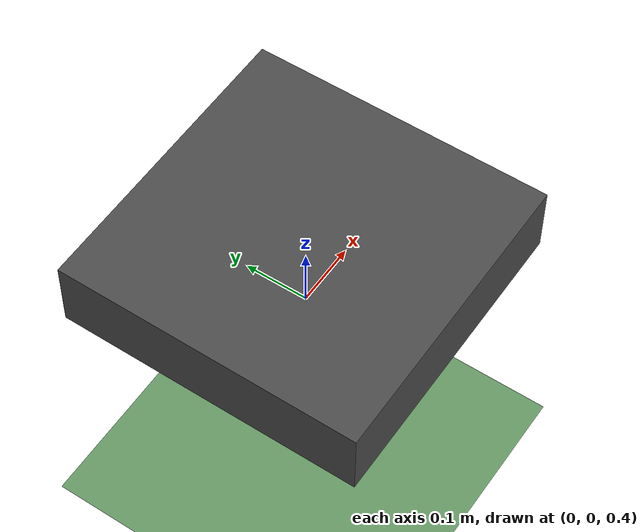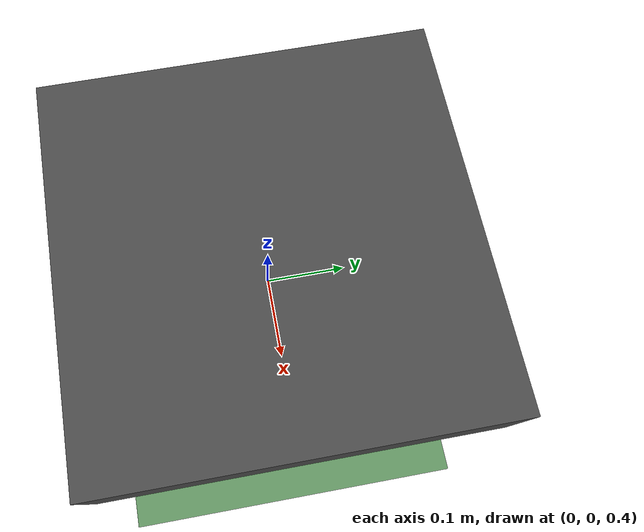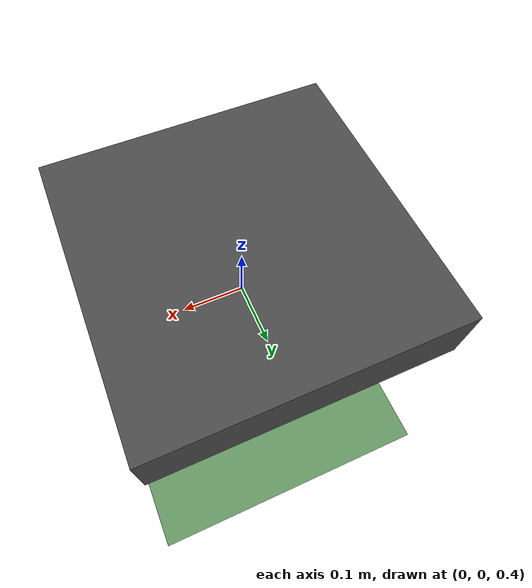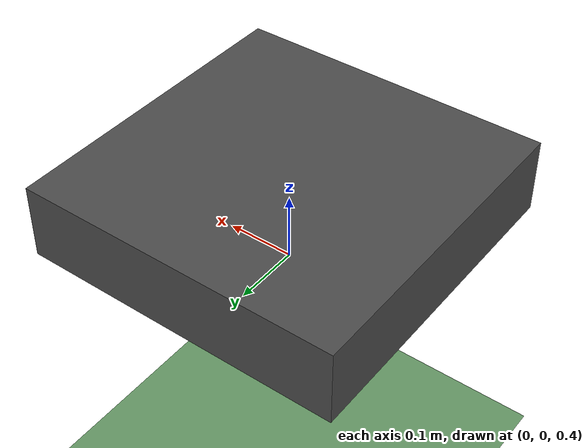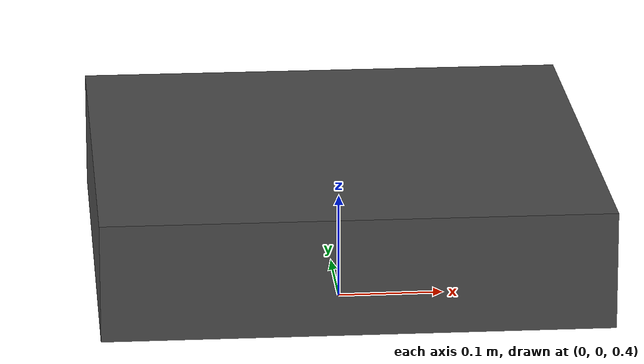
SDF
<?xml version="1.0" ?>
<sdf version="1.9">
  <world name="minzanix_world">
    <!-- Physics -->
    <physics name="1ms" type="ignored">
      <max_step_size>0.004</max_step_size>
      <real_time_factor>1.0</real_time_factor>
    </physics>

    <!-- Plugins -->
    <plugin filename="gz-sim-physics-system" name="gz::sim::systems::Physics"></plugin>
    <plugin filename="gz-sim-user-commands-system" name="gz::sim::systems::UserCommands"></plugin>
    <plugin filename="gz-sim-scene-broadcaster-system" name="gz::sim::systems::SceneBroadcaster"></plugin>
    <plugin filename="gz-sim-imu-system" name="gz::sim::systems::Imu"></plugin>
    <plugin filename="gz-sim-air-pressure-system" name="gz::sim::systems::AirPressure"></plugin>
    <plugin filename="gz-sim-sensors-system" name="gz::sim::systems::Sensors">
      <render_engine>ogre2</render_engine>
    </plugin>

    <!-- Lighting -->
    <light type="directional" name="sun">
      <cast_shadows>true</cast_shadows>
      <pose>0 0 10 0 0 0</pose>
      <diffuse>0.8 0.8 0.8 1</diffuse>
      <specular>0.2 0.2 0.2 1</specular>
      <direction>-0.5 0.1 -0.9</direction>
    </light>

    <!-- Ground plane -->
    <model name="ground_plane">
      <static>true</static>
      <link name="link">
        <collision name="collision">
          <geometry>
            <plane>
              <normal>0 0 1</normal>
              <size>100 100</size>
            </plane>
          </geometry>
        </collision>
        <visual name="visual">
          <geometry>
            <plane>
              <normal>0 0 1</normal>
              <size>100 100</size>
            </plane>
          </geometry>
          <material>
            <ambient>0.3 0.5 0.3 1</ambient>
            <diffuse>0.4 0.6 0.4 1</diffuse>
          </material>
        </visual>
      </link>
    </model>

    <!-- Simple X500 Quadcopter -->
    <model name="x500">
      <pose>0 0 0.5 0 0 0</pose>

      <!-- Base link (body) -->
      <link name="base_link">
        <inertial>
          <mass>1.5</mass>
          <inertia>
            <ixx>0.029125</ixx>
            <ixy>0</ixy>
            <ixz>0</ixz>
            <iyy>0.029125</iyy>
            <iyz>0</iyz>
            <izz>0.055225</izz>
          </inertia>
        </inertial>

        <collision name="collision">
          <geometry>
            <box>
              <size>0.47 0.47 0.11</size>
            </box>
          </geometry>
        </collision>

        <visual name="visual">
          <geometry>
            <box>
              <size>0.47 0.47 0.11</size>
            </box>
          </geometry>
          <material>
            <ambient>0.2 0.2 0.2 1</ambient>
            <diffuse>0.3 0.3 0.3 1</diffuse>
          </material>
        </visual>

        <!-- IMU Sensor -->
        <sensor name="imu_sensor" type="imu">
          <always_on>1</always_on>
          <update_rate>250</update_rate>
          <topic>/world/minzanix_world/model/x500/link/base_link/sensor/imu_sensor/imu</topic>
          <imu>
            <angular_velocity>
              <x><noise type="gaussian"><stddev>0.0003</stddev></noise></x>
              <y><noise type="gaussian"><stddev>0.0003</stddev></noise></y>
              <z><noise type="gaussian"><stddev>0.0003</stddev></noise></z>
            </angular_velocity>
            <linear_acceleration>
              <x><noise type="gaussian"><stddev>0.017</stddev></noise></x>
              <y><noise type="gaussian"><stddev>0.017</stddev></noise></y>
              <z><noise type="gaussian"><stddev>0.017</stddev></noise></z>
            </linear_acceleration>
          </imu>
        </sensor>

        <!-- Barometer/Altimeter -->
        <sensor name="air_pressure_sensor" type="air_pressure">
          <always_on>1</always_on>
          <update_rate>50</update_rate>
          <topic>/world/minzanix_world/model/x500/link/base_link/sensor/air_pressure_sensor/air_pressure</topic>
          <air_pressure>
            <pressure>
              <noise type="gaussian"><stddev>0.01</stddev></noise>
            </pressure>
          </air_pressure>
        </sensor>
      </link>

      <!-- Motor thrust plugin -->
      <plugin filename="gz-sim-apply-joint-force-system" name="gz::sim::systems::ApplyJointForce">
        <joint_name>rotor_0_joint</joint_name>
      </plugin>
    </model>
  </world>
</sdf>
